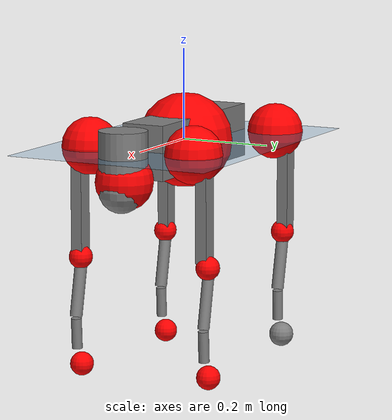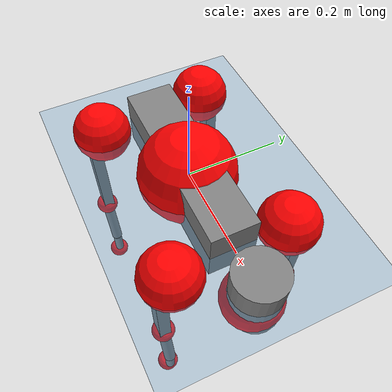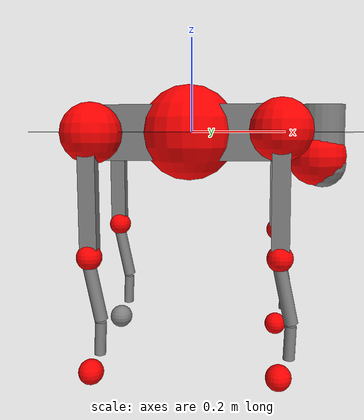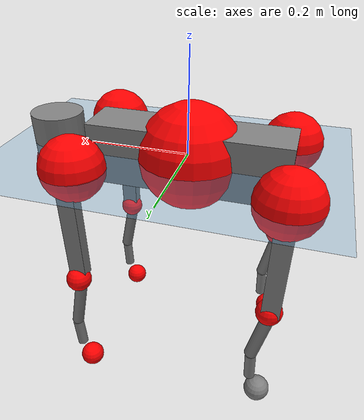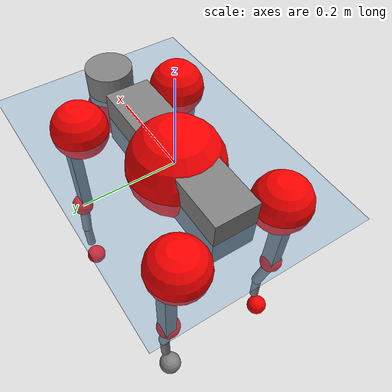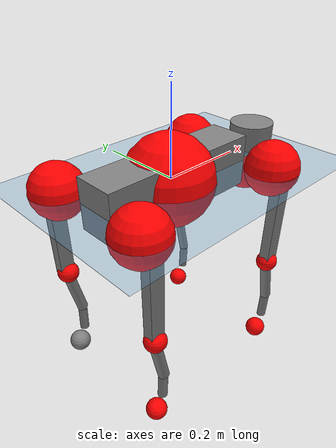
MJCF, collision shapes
<mujoco model="go2">
  <compiler angle="radian" assetdir="assets" balanceinertia="true" inertiafromgeom="false"/>

  <option timestep="0.005" density="1.2" viscosity="2e-05"/>

  <size nkey="1"/>

  <visual>
    <quality shadowsize="8192"/>
    <map shadowclip="0.5"/>
  </visual>

  <default>
    <default class="/">
      <geom contype="0" conaffinity="0" group="1" solref="-1000 -80"/>
      <site size="0.01 0.005 0.005" group="5"/>
      <general forcelimited="true" biastype="affine" gainprm="20" biasprm="0 -20 -0.5"/>
      <default class="go2">
        <joint armature="0.01" damping="0.01" frictionloss="0.2"/>
        <geom condim="1" margin="0.001"/>
        <default class="visual">
          <geom type="mesh" group="2"/>
        </default>
        <default class="collision">
          <geom group="3"/>
          <default class="foot">
            <geom size="0.022 0 0" condim="6" priority="1" friction="0.8 0.02 0.01" solimp="0.015 1 0.022"/>
          </default>
        </default>
        <default class="reward_collision_sphere">
          <geom group="5" rgba="1 0 0 1"/>
        </default>
      </default>
    </default>
  </default>

  <asset>
    <texture type="skybox" colorspace="auto" name="//unnamed_texture_0" builtin="gradient" rgb1="0.95 0.95 0.95" rgb2="0.95 0.95 0.95" width="100" height="600"/>
    <texture type="2d" colorspace="auto" name="texplane" builtin="checker" rgb1="0.345 0.575 0.748" rgb2="0.345 0.575 0.748" markrgb="1 1 1" width="512" height="512"/>
    <material name="MatPlane" class="/" texture="texplane" texuniform="true" texrepeat="2 2" specular="0.9"/>
    <material name="metal" class="/" rgba="0.9 0.95 0.95 1"/>
    <material name="black" class="/" rgba="0 0 0 1"/>
    <material name="white" class="/"/>
    <material name="gray" class="/" rgba="0.671705 0.692426 0.77427 1"/>
    <mesh name="base_0" class="/" file="base_0.obj"/>
    <mesh name="base_1" class="/" file="base_1.obj"/>
    <mesh name="base_2" class="/" file="base_2.obj"/>
    <mesh name="base_3" class="/" file="base_3.obj"/>
    <mesh name="base_4" class="/" file="base_4.obj"/>
    <mesh name="hip_0" class="/" file="hip_0.obj"/>
    <mesh name="hip_1" class="/" file="hip_1.obj"/>
    <mesh name="thigh_0" class="/" file="thigh_0.obj"/>
    <mesh name="thigh_1" class="/" file="thigh_1.obj"/>
    <mesh name="thigh_mirror_0" class="/" file="thigh_mirror_0.obj"/>
    <mesh name="thigh_mirror_1" class="/" file="thigh_mirror_1.obj"/>
    <mesh name="calf_0" class="/" file="calf_0.obj"/>
    <mesh name="calf_1" class="/" file="calf_1.obj"/>
    <mesh name="calf_mirror_0" class="/" file="calf_mirror_0.obj"/>
    <mesh name="calf_mirror_1" class="/" file="calf_mirror_1.obj"/>
    <mesh name="foot" class="/" file="foot.obj"/>
  </asset>

  <worldbody>
    <geom name="floor" class="/" size="100 100 0.125" type="plane" group="0" material="MatPlane"/>
    <light name="toplight_shadow" class="/" pos="0 0 5" dir="0.0990148 0.0990148 -0.990148" type="directional" ambient="0.04 0.04 0.04" diffuse="0.55 0.55 0.55" specular="0.12 0.12 0.12"/>
    <light name="toplight_fill" class="/" pos="0 0 5" dir="0.0990148 0.0990148 -0.990148" type="directional" castshadow="false" ambient="0.04 0.04 0.04" diffuse="0.3 0.3 0.3" specular="0.08 0.08 0.08"/>
    <body name="trunk" childclass="go2" pos="-0.00599603 0.000105289 -0.0019865" quat="1 0.000418225 -0.000435874 -0.00047862">
      <inertial pos="0.0202679 -0.00227559 -0.00599253" quat="0.00367257 0.715758 0.00300829 0.698333" mass="7.93961" diaginertia="0.0842191 0.0959183 0.042888"/>
      <joint name="//unnamed_joint_0" type="free" armature="0" damping="0" frictionloss="0"/>
      <geom name="//unnamed_geom_1" class="visual" material="black" mesh="base_0"/>
      <geom name="//unnamed_geom_2" class="visual" material="black" mesh="base_1"/>
      <geom name="//unnamed_geom_3" class="visual" material="black" mesh="base_2"/>
      <geom name="//unnamed_geom_4" class="visual" material="white" mesh="base_3"/>
      <geom name="//unnamed_geom_5" class="visual" material="gray" mesh="base_4"/>
      <geom name="trunk_1" class="collision" size="0.195506 0.0485907 0.0592442" type="box"/>
      <geom name="trunk_2" class="collision" size="0.0519686 0.0467718" pos="0.279549 0 0.011224" type="cylinder"/>
      <geom name="trunk_3" class="collision" size="0.0488505" pos="0.287396 0 -0.0673437"/>
      <geom name="//unnamed_geom_9" class="reward_collision_sphere" size="0.103937"/>
      <geom name="//unnamed_geom_10" class="reward_collision_sphere" size="0.0623623" pos="0.274644 0 -0.0505078"/>
      <site name="imu" pos="-0.0187588 -0.0106911 0.0847685" size="0.0103937"/>
      <camera name="track" pos="0 -2.0297 0" quat="0.707107 0.707107 0 0" mode="trackcom"/>
      <camera name="ego_camera" pos="0.306032 0 0.0505078" quat="-0.5 -0.5 0.5 0.5"/>
      <body name="FL_hip" pos="0.191375 0.048823 0.00235869" quat="0.999997 0.00202068 0.00129324 0.00107845">
        <inertial pos="0.00155747 0.00213741 -0.00151053" quat="0.497117 0.499431 0.505641 0.497765" mass="0.730816" diaginertia="0.000769949 0.000657545 0.000816378"/>
        <joint name="FL_hip_joint" pos="0 0 0" axis="0.999023 -0.0199113 0.0394659" stiffness="0.0338507" range="-1.08774 1.04837" armature="0.014113" damping="0.0146079" frictionloss="0.198126"/>
        <geom name="//unnamed_geom_11" class="visual" material="metal" mesh="hip_0"/>
        <geom name="//unnamed_geom_12" class="visual" material="gray" mesh="hip_1"/>
        <geom name="//unnamed_geom_13" class="collision" size="0.0478111 0.0207874" pos="0 0.0811879 0" quat="0.707107 0.707107 0 0" type="cylinder"/>
        <geom name="//unnamed_geom_14" class="reward_collision_sphere" size="0.0623623" pos="0 0.0710394 0"/>
        <body name="FL_thigh" pos="0.00261359 0.0972058 0.00200617" quat="1 -0.000213569 0.000121132 2.57648e-05">
          <inertial pos="-0.0060014 -0.0220829 -0.028744" quat="0.827956 0.0835274 -0.0184466 0.554231" mass="1.31133" diaginertia="0.00544561 0.00621601 0.00152896"/>
          <joint name="FL_thigh_joint" pos="0 0 0" axis="0.00861134 0.999963 0.000154699" stiffness="0.0146253" range="-1.57508 3.49557" armature="0.00758163" damping="0.0158104" frictionloss="0.227297"/>
          <geom name="//unnamed_geom_15" class="visual" material="metal" mesh="thigh_0"/>
          <geom name="//unnamed_geom_16" class="visual" material="gray" mesh="thigh_1"/>
          <geom name="//unnamed_geom_17" class="collision" size="0.110693 0.0127323 0.0176693" pos="0 0 -0.119535" quat="0.707107 0 0.707107 0" type="box"/>
          <body name="FL_calf" pos="0.00107753 0.0082165 -0.240946" quat="0.999999 -0.000565757 -0.000869038 0.00134229">
            <inertial pos="0.0052523 -0.00220364 -0.160703" quat="0.717838 0.0338436 -0.00766338 0.695345" mass="0.256312" diaginertia="0.00138227 0.00152927 9.80188e-05"/>
            <joint name="FL_calf_joint" pos="0 0 0" axis="0.000175921 1 0.000418553" stiffness="0.0106568" range="-2.72711 -0.877537" armature="0.0102696" damping="0.0244822" frictionloss="0.230039"/>
            <geom name="//unnamed_geom_18" class="visual" material="gray" mesh="calf_0"/>
            <geom name="//unnamed_geom_19" class="visual" material="black" mesh="calf_1"/>
            <geom name="FL_calf0" class="collision" size="0.0124725 0.0623623" pos="0.00784698 0 -0.0673437" quat="0.994493 0 -0.104807 0" type="cylinder"/>
            <geom name="//unnamed_geom_21" class="collision" size="0.0114331 0.0337796" pos="0.0196174 0 -0.166115" quat="0.999688 0 0.0249974 0" type="cylinder"/>
            <geom name="//unnamed_geom_22" class="visual" pos="0 0 -0.23907" quat="1 0 0 0" material="black" mesh="foot"/>
            <geom name="FL_foot" class="foot" size="0.0197909" pos="-0.00196174 0 -0.23907"/>
            <geom name="//unnamed_geom_24" class="reward_collision_sphere" size="0.0259843"/>
            <geom name="//unnamed_geom_25" class="reward_collision_sphere" size="0.0259843" pos="-0.00196174 0 -0.23907"/>
            <site name="FL_foot" class="foot" pos="-0.00196174 0 -0.23907" size="0.0103937"/>
          </body>
        </body>
      </body>
      <body name="FR_hip" pos="0.197727 -0.0550049 0.00527176" quat="1 -3.69613e-05 0.000471095 -0.000851545">
        <inertial pos="-0.0130259 -0.000765042 0.00680623" quat="0.488588 0.511078 0.500937 0.499144" mass="0.711259" diaginertia="0.000713585 0.000604479 0.00078063"/>
        <joint name="FR_hip_joint" pos="0 0 0" axis="0.999572 0.0269056 0.0114445" stiffness="0.015049" range="-0.912932 1.09066" armature="0.0103339" damping="0.00367975" frictionloss="0.260733"/>
        <geom name="//unnamed_geom_26" class="visual" pos="0 -9.36905e-10 -4.01858e-08" quat="4.63268e-05 1 0 0" material="metal" mesh="hip_0"/>
        <geom name="//unnamed_geom_27" class="visual" pos="0 -1.51884e-09 9.93948e-08" quat="4.63268e-05 1 0 0" material="gray" mesh="hip_1"/>
        <geom name="//unnamed_geom_28" class="collision" size="0.0478111 0.0207874" pos="0 -0.0811879 0" quat="0.707107 0.707107 0 0" type="cylinder"/>
        <geom name="//unnamed_geom_29" class="reward_collision_sphere" size="0.0623623" pos="0 -0.0710394 0"/>
        <body name="FR_thigh" pos="0.000193102 -0.0984011 -0.00198616" quat="1 -6.28726e-08 1.04871e-05 -1.59552e-05">
          <inertial pos="-0.0024796 0.0138152 -0.0354639" quat="0.550927 -0.0202364 0.088137 0.829639" mass="1.3048" diaginertia="0.00534472 0.00650802 0.00157554"/>
          <joint name="FR_thigh_joint" pos="0 0 0" axis="0.0163984 -0.999794 -0.0119388" range="-3.53426 1.54956" armature="0.00971836" damping="0.029329" frictionloss="0.227794"/>
          <geom name="//unnamed_geom_30" class="visual" material="metal" mesh="thigh_mirror_0"/>
          <geom name="//unnamed_geom_31" class="visual" material="gray" mesh="thigh_mirror_1"/>
          <geom name="//unnamed_geom_32" class="collision" size="0.110693 0.0127323 0.0176693" pos="0 0 -0.119535" quat="0.707107 0 0.707107 0" type="box"/>
          <body name="FR_calf" pos="-7.23477e-05 0.00062772 -0.244193" quat="0.999992 0.000499759 -0.00387027 -0.000173084">
            <inertial pos="-0.00279654 0.00333359 -0.163768" quat="0.699508 0.00190583 0.00655257 0.714592" mass="0.280816" diaginertia="0.00129799 0.0014299 8.31543e-05"/>
            <joint name="FR_calf_joint" pos="0 0 0" axis="0.000498299 -1 0.000230633" range="0.97882 2.68472" armature="0.0115957" damping="0" frictionloss="0.147941"/>
            <geom name="//unnamed_geom_33" class="visual" material="gray" mesh="calf_mirror_0"/>
            <geom name="//unnamed_geom_34" class="visual" material="black" mesh="calf_mirror_1"/>
            <geom name="FR_calf0" class="collision" size="0.0135118 0.0623623" pos="0.00980872 0 -0.0673437" quat="0.995004 0 -0.0998334 0" type="cylinder"/>
            <geom name="//unnamed_geom_36" class="collision" size="0.0114331 0.0337796" pos="0.0196174 0 -0.166115" quat="0.999688 0 0.0249974 0" type="cylinder"/>
            <geom name="//unnamed_geom_37" class="visual" pos="0 0 -0.23907" quat="1 0 0 0" material="black" mesh="foot"/>
            <geom name="FR_foot" class="foot" size="0.0223774" pos="-0.00196174 0 -0.23907"/>
            <geom name="//unnamed_geom_39" class="reward_collision_sphere" size="0.0259843"/>
            <geom name="//unnamed_geom_40" class="reward_collision_sphere" size="0.0259843" pos="-0.00196174 0 -0.23907"/>
            <site name="FR_foot" class="foot" pos="-0.00196174 0 -0.23907" size="0.0103937"/>
          </body>
        </body>
      </body>
      <body name="RL_hip" pos="-0.198964 0.0525428 0.00109405" quat="1 -0.000272025 -3.13556e-05 -0.000169899">
        <inertial pos="-0.00178391 0.0105499 4.09727e-05" quat="0.510755 0.497376 0.513637 0.477413" mass="0.771168" diaginertia="0.000790681 0.000637147 0.000914005"/>
        <joint name="RL_hip_joint" pos="0 0 0" axis="-0.999997 -0.000819843 0.00244318" stiffness="0.0048509" range="-1.11198 1.05212" armature="0.0105117" damping="0" frictionloss="0.201884"/>
        <geom name="//unnamed_geom_41" class="visual" pos="1.23289e-09 0 2.41675e-07" quat="4.63268e-05 0 1 0" material="metal" mesh="hip_0"/>
        <geom name="//unnamed_geom_42" class="visual" pos="1.99866e-09 0 2.14331e-07" quat="4.63268e-05 0 1 0" material="gray" mesh="hip_1"/>
        <geom name="//unnamed_geom_43" class="collision" size="0.0478111 0.0207874" pos="0 0.0811879 0" quat="0.707107 0.707107 0 0" type="cylinder"/>
        <geom name="//unnamed_geom_44" class="reward_collision_sphere" size="0.0623623" pos="0 0.0710394 0"/>
        <body name="RL_thigh" pos="-0.00167336 0.0966795 0.00257701" quat="1 -4.71689e-05 -0.000111204 -0.000107863">
          <inertial pos="-0.0019817 -0.0300843 -0.0349308" quat="0.836202 0.0967813 -0.0298226 0.53899" mass="1.26292" diaginertia="0.00535606 0.00614853 0.00165067"/>
          <joint name="RL_thigh_joint" pos="0 0 0" axis="0.0283207 0.999499 -0.0141518" stiffness="0.0216958" range="-0.587504 4.49057" armature="0.0069351" damping="0.00964629" frictionloss="0.154078"/>
          <geom name="//unnamed_geom_45" class="visual" material="metal" mesh="thigh_0"/>
          <geom name="//unnamed_geom_46" class="visual" material="gray" mesh="thigh_1"/>
          <geom name="//unnamed_geom_47" class="collision" size="0.110693 0.0127323 0.0176693" pos="0 0 -0.119535" quat="0.707107 0 0.707107 0" type="box"/>
          <body name="RL_calf" pos="0.00273443 -0.00499068 -0.231114" quat="0.999991 -0.00291071 -0.000961115 0.00279551">
            <inertial pos="0.00812872 0.000189871 -0.167822" quat="0.710888 -0.000763295 -0.011795 0.703206" mass="0.292982" diaginertia="0.00133398 0.00158855 9.62292e-05"/>
            <joint name="RL_calf_joint" pos="0 0 0" axis="0.00134576 0.999998 -0.00139504" stiffness="0.00457065" range="-2.69458 -0.784011" armature="0.0111585" damping="0.00512678" frictionloss="0.252957"/>
            <geom name="//unnamed_geom_48" class="visual" material="gray" mesh="calf_0"/>
            <geom name="//unnamed_geom_49" class="visual" material="black" mesh="calf_1"/>
            <geom name="RL_calf0" class="collision" size="0.0135118 0.0623623" pos="0.00980872 0 -0.0673437" quat="0.995004 0 -0.0998334 0" type="cylinder"/>
            <geom name="//unnamed_geom_51" class="collision" size="0.0114331 0.0337796" pos="0.0196174 0 -0.166115" quat="0.999688 0 0.0249974 0" type="cylinder"/>
            <geom name="//unnamed_geom_52" class="visual" pos="0 0 -0.23907" quat="1 0 0 0" material="black" mesh="foot"/>
            <geom name="RL_foot" class="foot" size="0.0272692" pos="-0.00196174 0 -0.23907"/>
            <geom name="//unnamed_geom_54" class="reward_collision_sphere" size="0.0259843"/>
            <geom name="//unnamed_geom_55" class="reward_collision_sphere" size="0.0259843" pos="-0.00196174 0 -0.23907"/>
            <site name="RL_foot" class="foot" pos="-0.00196174 0 -0.23907" size="0.0103937"/>
          </body>
        </body>
      </body>
      <body name="RR_hip" pos="-0.182314 -0.0470201 -0.000903915" quat="1 0.000106836 -0.000107573 -0.000263375">
        <inertial pos="0.00171282 -0.00325833 0.000252091" quat="0.497032 0.526917 0.481356 0.493572" mass="0.740625" diaginertia="0.000764423 0.000604115 0.000808606"/>
        <joint name="RR_hip_joint" pos="0 0 0" axis="-0.99926 0.0368977 0.0108247" range="-1.05677 1.06581" armature="0.0103265" damping="0.00439078" frictionloss="0.217514"/>
        <geom name="//unnamed_geom_56" class="visual" pos="-1.23172e-09 -9.36905e-10 2.81861e-07" quat="2.14617e-09 4.63268e-05 4.63268e-05 -1" material="metal" mesh="hip_0"/>
        <geom name="//unnamed_geom_57" class="visual" pos="-2.00157e-09 -1.51884e-09 1.14937e-07" quat="2.14617e-09 4.63268e-05 4.63268e-05 -1" material="gray" mesh="hip_1"/>
        <geom name="//unnamed_geom_58" class="collision" size="0.0478111 0.0207874" pos="0 -0.0811879 0" quat="0.707107 0.707107 0 0" type="cylinder"/>
        <geom name="//unnamed_geom_59" class="reward_collision_sphere" size="0.0623623" pos="0 -0.0710394 0"/>
        <body name="RR_thigh" pos="0.000775396 -0.0982907 -0.00636269" quat="1 8.98509e-05 3.63303e-05 0.000134051">
          <inertial pos="-0.00209022 0.0208065 -0.035746" quat="0.537249 -0.0589056 0.0863658 0.83692" mass="1.27807" diaginertia="0.00533174 0.00593897 0.00140803"/>
          <joint name="RR_thigh_joint" pos="0 0 0" axis="0.00784811 -0.999955 0.00537833" stiffness="0.0181173" range="-4.53409 0.532561" armature="0.00797986" damping="0.035815" frictionloss="0.218874"/>
          <geom name="//unnamed_geom_60" class="visual" material="metal" mesh="thigh_mirror_0"/>
          <geom name="//unnamed_geom_61" class="visual" material="gray" mesh="thigh_mirror_1"/>
          <geom name="//unnamed_geom_62" class="collision" size="0.110693 0.0127323 0.0176693" pos="0 0 -0.119535" quat="0.707107 0 0.707107 0" type="box"/>
          <body name="RR_calf" pos="-0.00052571 -0.00295109 -0.241702" quat="1 -0.000718521 -4.12248e-06 -0.000579093">
            <inertial pos="0.0119976 0.00847604 -0.165796" quat="0.705314 -0.000324838 -0.00645614 0.708865" mass="0.246682" diaginertia="0.00136552 0.00142843 9.14281e-05"/>
            <joint name="RR_calf_joint" pos="0 0 0" axis="-0.00444828 -0.999974 0.00562005" range="0.829458 2.58178" armature="0.010106" damping="0.0134757" frictionloss="0.13216"/>
            <geom name="//unnamed_geom_63" class="visual" material="gray" mesh="calf_mirror_0"/>
            <geom name="//unnamed_geom_64" class="visual" material="black" mesh="calf_mirror_1"/>
            <geom name="RR_calf0" class="collision" size="0.0135118 0.0623623" pos="0.00980872 0 -0.0673437" quat="0.995004 0 -0.0998334 0" type="cylinder"/>
            <geom name="//unnamed_geom_66" class="collision" size="0.0114331 0.0337796" pos="0.0196174 0 -0.166115" quat="0.999688 0 0.0249974 0" type="cylinder"/>
            <geom name="//unnamed_geom_67" class="visual" pos="0 0 -0.23907" quat="1 0 0 0" material="black" mesh="foot"/>
            <geom name="RR_foot" class="foot" size="0.0167342" pos="-0.00196174 0 -0.23907"/>
            <geom name="//unnamed_geom_69" class="reward_collision_sphere" size="0.0259843"/>
            <geom name="//unnamed_geom_70" class="reward_collision_sphere" size="0.0259843" pos="-0.00196174 0 -0.23907"/>
            <site name="RR_foot" class="foot" pos="-0.00196174 0 -0.23907" size="0.0103937"/>
          </body>
        </body>
      </body>
    </body>
  </worldbody>

  <contact>
    <pair class="/" geom1="floor" geom2="FL_foot" name="//unnamed_contact_0"/>
    <pair class="/" geom1="floor" geom2="FR_foot" name="//unnamed_contact_1"/>
    <pair class="/" geom1="floor" geom2="RL_foot" name="//unnamed_contact_2"/>
    <pair class="/" geom1="floor" geom2="RR_foot" name="//unnamed_contact_3"/>
  </contact>

  <actuator>
    <general name="FL_hip" class="/" joint="FL_hip_joint" forcerange="-24.6621 24.6621" gainprm="20.6999" biasprm="0 -20.6999 -0.532428"/>
    <general name="FL_thigh" class="/" joint="FL_thigh_joint" forcerange="-29.3871 29.3871" gainprm="20.6999" biasprm="0 -20.6999 -0.532428"/>
    <general name="FL_calf" class="/" joint="FL_calf_joint" forcerange="-46.5056 46.5056" gainprm="20.6999" biasprm="0 -20.6999 -0.532428"/>
    <general name="FR_hip" class="/" joint="FR_hip_joint" forcerange="-24.4299 24.4299" gainprm="20.6999" biasprm="0 -20.6999 -0.532428"/>
    <general name="FR_thigh" class="/" joint="FR_thigh_joint" forcerange="-26.4969 26.4969" gainprm="20.6999" biasprm="0 -20.6999 -0.532428"/>
    <general name="FR_calf" class="/" joint="FR_calf_joint" forcerange="-42.9026 42.9026" gainprm="20.6999" biasprm="0 -20.6999 -0.532428"/>
    <general name="RL_hip" class="/" joint="RL_hip_joint" forcerange="-24.5105 24.5105" gainprm="20.6999" biasprm="0 -20.6999 -0.532428"/>
    <general name="RL_thigh" class="/" joint="RL_thigh_joint" forcerange="-22.373 22.373" gainprm="20.6999" biasprm="0 -20.6999 -0.532428"/>
    <general name="RL_calf" class="/" joint="RL_calf_joint" forcerange="-50.0405 50.0405" gainprm="20.6999" biasprm="0 -20.6999 -0.532428"/>
    <general name="RR_hip" class="/" joint="RR_hip_joint" forcerange="-22.9096 22.9096" gainprm="20.6999" biasprm="0 -20.6999 -0.532428"/>
    <general name="RR_thigh" class="/" joint="RR_thigh_joint" forcerange="-25.4852 25.4852" gainprm="20.6999" biasprm="0 -20.6999 -0.532428"/>
    <general name="RR_calf" class="/" joint="RR_calf_joint" forcerange="-61.9439 61.9439" gainprm="20.6999" biasprm="0 -20.6999 -0.532428"/>
  </actuator>

  <sensor>
    <gyro site="imu" name="imu_angular_velocity"/>
    <velocimeter site="imu" name="imu_linear_velocity"/>
    <framelinvel objtype="site" objname="FL_foot" name="FL_foot_global_linear_velocity"/>
    <framelinvel objtype="site" objname="FR_foot" name="FR_foot_global_linear_velocity"/>
    <framelinvel objtype="site" objname="RL_foot" name="RL_foot_global_linear_velocity"/>
    <framelinvel objtype="site" objname="RR_foot" name="RR_foot_global_linear_velocity"/>
  </sensor>

  <keyframe>
    <key name="home" qpos="0 0 0.325 1 0 0 0 0.1 0.8 -1.5 -0.1 -0.8 1.5 -0.1 0.8 -1.5 0.1 -0.8 1.5"/>
  </keyframe>
</mujoco>
